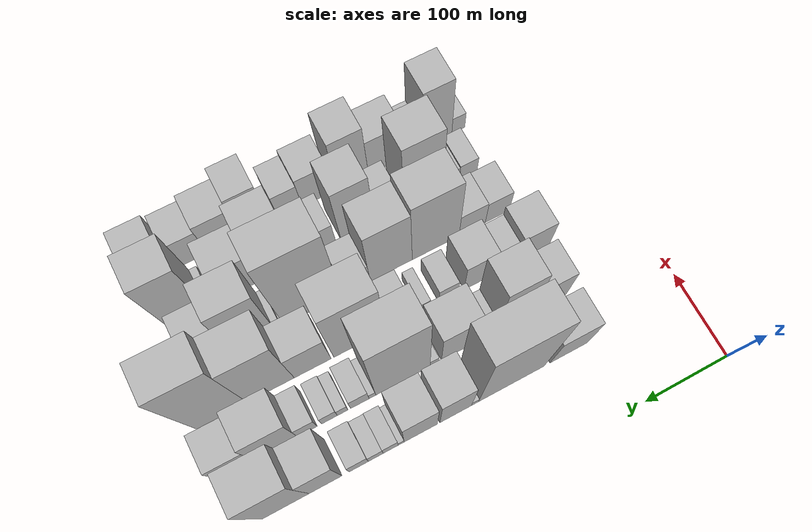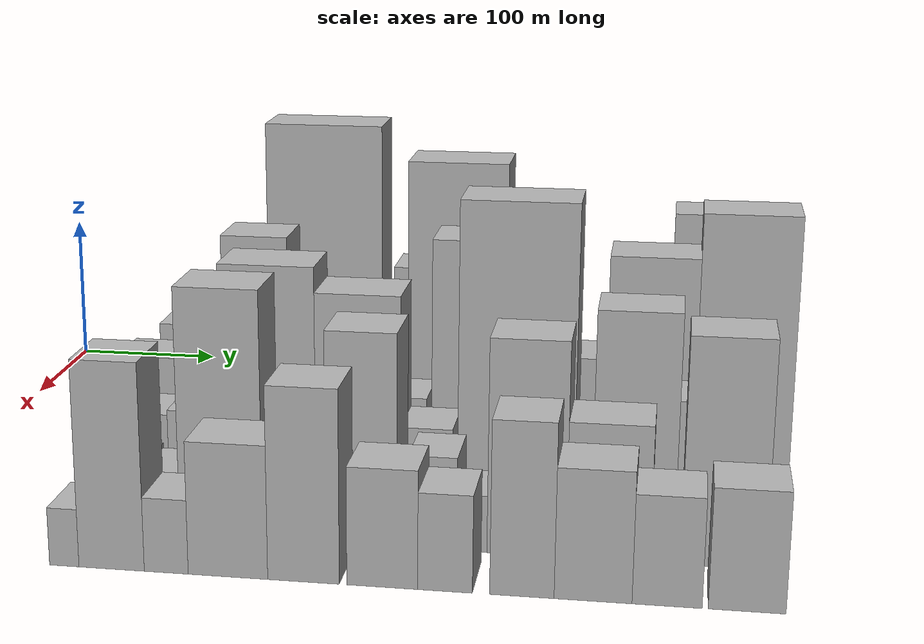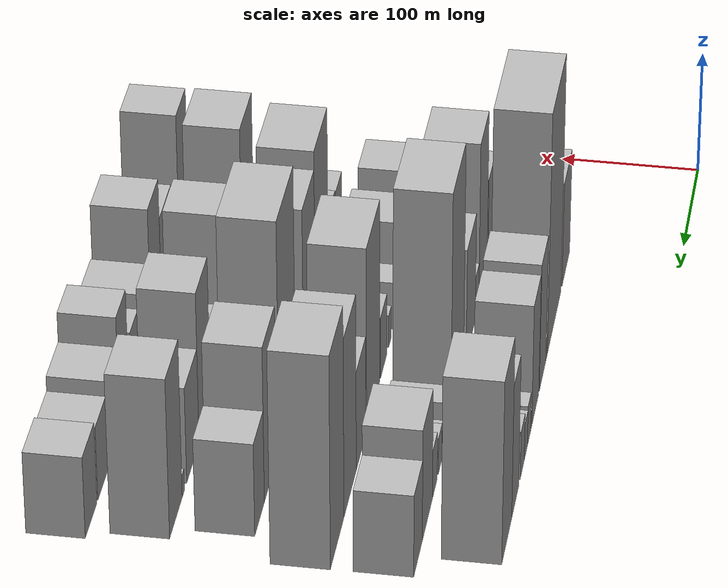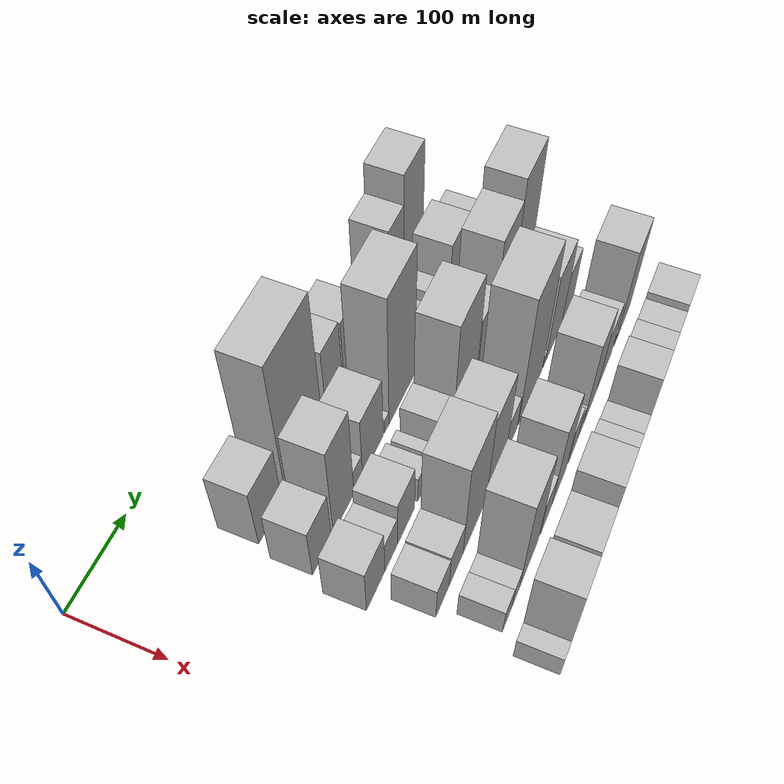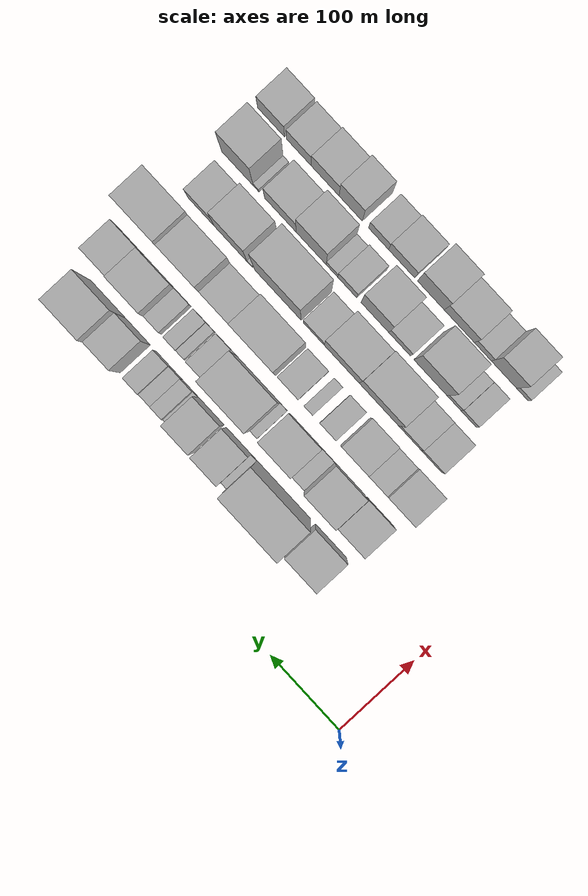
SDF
<sdf version="1.6">
 <world name="default">
  <model name="building_33">
   <static>1</static>
   <pose>100.0000 142.1767 0 0.000000 0.000000 0.000000</pose>
   <link name="link">
    <pose>0 0 43.50 0 0 0</pose>
    <collision name="collision"><geometry><box><size>40.0000 44.8332 87.0000</size></box></geometry></collision>
    <visual name="visual">
     <cast_shadows>0</cast_shadows>
     <geometry><box><size>40.0000 44.8332 87.0000</size></box></geometry>
     <material>
      <script>
       <uri>model://HANNAS_wall/materials/scripts</uri>
       <uri>model://HANNAS_wall/materials/textures</uri>
       <name>vrc/HANNAS_wall</name>
      </script>
     </material>
    </visual>
   </link>
  </model>
  <model name="building_34">
   <static>1</static>
   <pose>100.0000 210.1831 0 0.000000 0.000000 0.000000</pose>
   <link name="link">
    <pose>0 0 99.00 0 0 0</pose>
    <collision name="collision"><geometry><box><size>40.0000 77.1794 198.0000</size></box></geometry></collision>
    <visual name="visual">
     <cast_shadows>0</cast_shadows>
     <geometry><box><size>40.0000 77.1794 198.0000</size></box></geometry>
     <material>
      <script>
       <uri>model://HANNAS_wall/materials/scripts</uri>
       <uri>model://HANNAS_wall/materials/textures</uri>
       <name>vrc/HANNAS_wall</name>
      </script>
     </material>
    </visual>
   </link>
  </model>
  <model name="building_35">
   <static>1</static>
   <pose>100.0000 252.8782 0 0.000000 0.000000 0.000000</pose>
   <link name="link">
    <pose>0 0 9.00 0 0 0</pose>
    <collision name="collision"><geometry><box><size>40.0000 8.2108 18.0000</size></box></geometry></collision>
    <visual name="visual">
     <cast_shadows>0</cast_shadows>
     <geometry><box><size>40.0000 8.2108 18.0000</size></box></geometry>
     <material>
      <script>
       <uri>model://HANNAS_wall/materials/scripts</uri>
       <uri>model://HANNAS_wall/materials/textures</uri>
       <name>vrc/HANNAS_wall</name>
      </script>
     </material>
    </visual>
   </link>
  </model>
  <model name="building_36">
   <static>1</static>
   <pose>100.0000 275.0869 0 0.000000 0.000000 0.000000</pose>
   <link name="link">
    <pose>0 0 52.50 0 0 0</pose>
    <collision name="collision"><geometry><box><size>40.0000 36.2067 105.0000</size></box></geometry></collision>
    <visual name="visual">
     <cast_shadows>0</cast_shadows>
     <geometry><box><size>40.0000 36.2067 105.0000</size></box></geometry>
     <material>
      <script>
       <uri>model://HANNAS_wall/materials/scripts</uri>
       <uri>model://HANNAS_wall/materials/textures</uri>
       <name>vrc/HANNAS_wall</name>
      </script>
     </material>
    </visual>
   </link>
  </model>
  <model name="building_37">
   <static>1</static>
   <pose>100.0000 314.8873 0 0.000000 0.000000 0.000000</pose>
   <link name="link">
    <pose>0 0 49.50 0 0 0</pose>
    <collision name="collision"><geometry><box><size>40.0000 37.3941 99.0000</size></box></geometry></collision>
    <visual name="visual">
     <cast_shadows>0</cast_shadows>
     <geometry><box><size>40.0000 37.3941 99.0000</size></box></geometry>
     <material>
      <script>
       <uri>model://HANNAS_wall/materials/scripts</uri>
       <uri>model://HANNAS_wall/materials/textures</uri>
       <name>vrc/HANNAS_wall</name>
      </script>
     </material>
    </visual>
   </link>
  </model>
  <model name="building_38">
   <static>1</static>
   <pose>100.0000 336.9596 0 0.000000 0.000000 0.000000</pose>
   <link name="link">
    <pose>0 0 7.50 0 0 0</pose>
    <collision name="collision"><geometry><box><size>40.0000 6.7504 15.0000</size></box></geometry></collision>
    <visual name="visual">
     <cast_shadows>0</cast_shadows>
     <geometry><box><size>40.0000 6.7504 15.0000</size></box></geometry>
     <material>
      <script>
       <uri>model://HANNAS_wall/materials/scripts</uri>
       <uri>model://HANNAS_wall/materials/textures</uri>
       <name>vrc/HANNAS_wall</name>
      </script>
     </material>
    </visual>
   </link>
  </model>
  <model name="building_39">
   <static>1</static>
   <pose>100.0000 348.7307 0 0.000000 0.000000 0.000000</pose>
   <link name="link">
    <pose>0 0 16.50 0 0 0</pose>
    <collision name="collision"><geometry><box><size>40.0000 16.7919 33.0000</size></box></geometry></collision>
    <visual name="visual">
     <cast_shadows>0</cast_shadows>
     <geometry><box><size>40.0000 16.7919 33.0000</size></box></geometry>
     <material>
      <script>
       <uri>model://HANNAS_wall/materials/scripts</uri>
       <uri>model://HANNAS_wall/materials/textures</uri>
       <name>vrc/HANNAS_wall</name>
      </script>
     </material>
    </visual>
   </link>
  </model>
  <model name="building_40">
   <static>1</static>
   <pose>100.0000 365.3119 0 0.000000 0.000000 0.000000</pose>
   <link name="link">
    <pose>0 0 15.00 0 0 0</pose>
    <collision name="collision"><geometry><box><size>40.0000 16.3705 30.0000</size></box></geometry></collision>
    <visual name="visual">
     <cast_shadows>0</cast_shadows>
     <geometry><box><size>40.0000 16.3705 30.0000</size></box></geometry>
     <material>
      <script>
       <uri>model://HANNAS_wall/materials/scripts</uri>
       <uri>model://HANNAS_wall/materials/textures</uri>
       <name>vrc/HANNAS_wall</name>
      </script>
     </material>
    </visual>
   </link>
  </model>
  <model name="building_41">
   <static>1</static>
   <pose>100.0000 384.2088 0 0.000000 0.000000 0.000000</pose>
   <link name="link">
    <pose>0 0 19.50 0 0 0</pose>
    <collision name="collision"><geometry><box><size>40.0000 21.4233 39.0000</size></box></geometry></collision>
    <visual name="visual">
     <cast_shadows>0</cast_shadows>
     <geometry><box><size>40.0000 21.4233 39.0000</size></box></geometry>
     <material>
      <script>
       <uri>model://HANNAS_wall/materials/scripts</uri>
       <uri>model://HANNAS_wall/materials/textures</uri>
       <name>vrc/HANNAS_wall</name>
      </script>
     </material>
    </visual>
   </link>
  </model>
  <model name="building_42">
   <static>1</static>
   <pose>100.0000 420.8297 0 0.000000 0.000000 0.000000</pose>
   <link name="link">
    <pose>0 0 54.00 0 0 0</pose>
    <collision name="collision"><geometry><box><size>40.0000 35.8184 108.0000</size></box></geometry></collision>
    <visual name="visual">
     <cast_shadows>0</cast_shadows>
     <geometry><box><size>40.0000 35.8184 108.0000</size></box></geometry>
     <material>
      <script>
       <uri>model://HANNAS_wall/materials/scripts</uri>
       <uri>model://HANNAS_wall/materials/textures</uri>
       <name>vrc/HANNAS_wall</name>
      </script>
     </material>
    </visual>
   </link>
  </model>
  <model name="building_43">
   <static>1</static>
   <pose>100.0000 463.9994 0 0.000000 0.000000 0.000000</pose>
   <link name="link">
    <pose>0 0 73.50 0 0 0</pose>
    <collision name="collision"><geometry><box><size>40.0000 50.5210 147.0000</size></box></geometry></collision>
    <visual name="visual">
     <cast_shadows>0</cast_shadows>
     <geometry><box><size>40.0000 50.5210 147.0000</size></box></geometry>
     <material>
      <script>
       <uri>model://HANNAS_wall/materials/scripts</uri>
       <uri>model://HANNAS_wall/materials/textures</uri>
       <name>vrc/HANNAS_wall</name>
      </script>
     </material>
    </visual>
   </link>
  </model>
  <model name="building_86">
   <static>1</static>
   <pose>155.0000 130.8605 0 0.000000 0.000000 0.000000</pose>
   <link name="link">
    <pose>0 0 37.50 0 0 0</pose>
    <collision name="collision"><geometry><box><size>40.0000 37.7377 75.0000</size></box></geometry></collision>
    <visual name="visual">
     <cast_shadows>0</cast_shadows>
     <geometry><box><size>40.0000 37.7377 75.0000</size></box></geometry>
     <material>
      <script>
       <uri>model://HANNAS_wall/materials/scripts</uri>
       <uri>model://HANNAS_wall/materials/textures</uri>
       <name>vrc/HANNAS_wall</name>
      </script>
     </material>
    </visual>
   </link>
  </model>
  <model name="building_87">
   <static>1</static>
   <pose>155.0000 175.2452 0 0.000000 0.000000 0.000000</pose>
   <link name="link">
    <pose>0 0 67.50 0 0 0</pose>
    <collision name="collision"><geometry><box><size>40.0000 43.0318 135.0000</size></box></geometry></collision>
    <visual name="visual">
     <cast_shadows>0</cast_shadows>
     <geometry><box><size>40.0000 43.0318 135.0000</size></box></geometry>
     <material>
      <script>
       <uri>model://HANNAS_wall/materials/scripts</uri>
       <uri>model://HANNAS_wall/materials/textures</uri>
       <name>vrc/HANNAS_wall</name>
      </script>
     </material>
    </visual>
   </link>
  </model>
  <model name="building_88">
   <static>1</static>
   <pose>155.0000 206.0267 0 0.000000 0.000000 0.000000</pose>
   <link name="link">
    <pose>0 0 18.00 0 0 0</pose>
    <collision name="collision"><geometry><box><size>40.0000 18.5311 36.0000</size></box></geometry></collision>
    <visual name="visual">
     <cast_shadows>0</cast_shadows>
     <geometry><box><size>40.0000 18.5311 36.0000</size></box></geometry>
     <material>
      <script>
       <uri>model://HANNAS_wall/materials/scripts</uri>
       <uri>model://HANNAS_wall/materials/textures</uri>
       <name>vrc/HANNAS_wall</name>
      </script>
     </material>
    </visual>
   </link>
  </model>
  <model name="building_89">
   <static>1</static>
   <pose>155.0000 238.3310 0 0.000000 0.000000 0.000000</pose>
   <link name="link">
    <pose>0 0 45.00 0 0 0</pose>
    <collision name="collision"><geometry><box><size>40.0000 46.0777 90.0000</size></box></geometry></collision>
    <visual name="visual">
     <cast_shadows>0</cast_shadows>
     <geometry><box><size>40.0000 46.0777 90.0000</size></box></geometry>
     <material>
      <script>
       <uri>model://HANNAS_wall/materials/scripts</uri>
       <uri>model://HANNAS_wall/materials/textures</uri>
       <name>vrc/HANNAS_wall</name>
      </script>
     </material>
    </visual>
   </link>
  </model>
  <model name="building_90">
   <static>1</static>
   <pose>155.0000 269.5385 0 0.000000 0.000000 0.000000</pose>
   <link name="link">
    <pose>0 0 10.50 0 0 0</pose>
    <collision name="collision"><geometry><box><size>40.0000 10.3374 21.0000</size></box></geometry></collision>
    <visual name="visual">
     <cast_shadows>0</cast_shadows>
     <geometry><box><size>40.0000 10.3374 21.0000</size></box></geometry>
     <material>
      <script>
       <uri>model://HANNAS_wall/materials/scripts</uri>
       <uri>model://HANNAS_wall/materials/textures</uri>
       <name>vrc/HANNAS_wall</name>
      </script>
     </material>
    </visual>
   </link>
  </model>
  <model name="building_91">
   <static>1</static>
   <pose>155.0000 305.9449 0 0.000000 0.000000 0.000000</pose>
   <link name="link">
    <pose>0 0 93.00 0 0 0</pose>
    <collision name="collision"><geometry><box><size>40.0000 62.4753 186.0000</size></box></geometry></collision>
    <visual name="visual">
     <cast_shadows>0</cast_shadows>
     <geometry><box><size>40.0000 62.4753 186.0000</size></box></geometry>
     <material>
      <script>
       <uri>model://HANNAS_wall/materials/scripts</uri>
       <uri>model://HANNAS_wall/materials/textures</uri>
       <name>vrc/HANNAS_wall</name>
      </script>
     </material>
    </visual>
   </link>
  </model>
  <model name="building_92">
   <static>1</static>
   <pose>155.0000 340.9703 0 0.000000 0.000000 0.000000</pose>
   <link name="link">
    <pose>0 0 9.00 0 0 0</pose>
    <collision name="collision"><geometry><box><size>40.0000 7.5755 18.0000</size></box></geometry></collision>
    <visual name="visual">
     <cast_shadows>0</cast_shadows>
     <geometry><box><size>40.0000 7.5755 18.0000</size></box></geometry>
     <material>
      <script>
       <uri>model://HANNAS_wall/materials/scripts</uri>
       <uri>model://HANNAS_wall/materials/textures</uri>
       <name>vrc/HANNAS_wall</name>
      </script>
     </material>
    </visual>
   </link>
  </model>
  <model name="building_93">
   <static>1</static>
   <pose>155.0000 355.2063 0 0.000000 0.000000 0.000000</pose>
   <link name="link">
    <pose>0 0 18.00 0 0 0</pose>
    <collision name="collision"><geometry><box><size>40.0000 20.8964 36.0000</size></box></geometry></collision>
    <visual name="visual">
     <cast_shadows>0</cast_shadows>
     <geometry><box><size>40.0000 20.8964 36.0000</size></box></geometry>
     <material>
      <script>
       <uri>model://HANNAS_wall/materials/scripts</uri>
       <uri>model://HANNAS_wall/materials/textures</uri>
       <name>vrc/HANNAS_wall</name>
      </script>
     </material>
    </visual>
   </link>
  </model>
  <model name="building_94">
   <static>1</static>
   <pose>155.0000 374.6204 0 0.000000 0.000000 0.000000</pose>
   <link name="link">
    <pose>0 0 12.00 0 0 0</pose>
    <collision name="collision"><geometry><box><size>40.0000 11.9318 24.0000</size></box></geometry></collision>
    <visual name="visual">
     <cast_shadows>0</cast_shadows>
     <geometry><box><size>40.0000 11.9318 24.0000</size></box></geometry>
     <material>
      <script>
       <uri>model://HANNAS_wall/materials/scripts</uri>
       <uri>model://HANNAS_wall/materials/textures</uri>
       <name>vrc/HANNAS_wall</name>
      </script>
     </material>
    </visual>
   </link>
  </model>
  <model name="building_95">
   <static>1</static>
   <pose>155.0000 389.4227 0 0.000000 0.000000 0.000000</pose>
   <link name="link">
    <pose>0 0 15.00 0 0 0</pose>
    <collision name="collision"><geometry><box><size>40.0000 17.6727 30.0000</size></box></geometry></collision>
    <visual name="visual">
     <cast_shadows>0</cast_shadows>
     <geometry><box><size>40.0000 17.6727 30.0000</size></box></geometry>
     <material>
      <script>
       <uri>model://HANNAS_wall/materials/scripts</uri>
       <uri>model://HANNAS_wall/materials/textures</uri>
       <name>vrc/HANNAS_wall</name>
      </script>
     </material>
    </visual>
   </link>
  </model>
  <model name="building_96">
   <static>1</static>
   <pose>155.0000 414.1274 0 0.000000 0.000000 0.000000</pose>
   <link name="link">
    <pose>0 0 19.50 0 0 0</pose>
    <collision name="collision"><geometry><box><size>40.0000 21.7367 39.0000</size></box></geometry></collision>
    <visual name="visual">
     <cast_shadows>0</cast_shadows>
     <geometry><box><size>40.0000 21.7367 39.0000</size></box></geometry>
     <material>
      <script>
       <uri>model://HANNAS_wall/materials/scripts</uri>
       <uri>model://HANNAS_wall/materials/textures</uri>
       <name>vrc/HANNAS_wall</name>
      </script>
     </material>
    </visual>
   </link>
  </model>
  <model name="building_97">
   <static>1</static>
   <pose>155.0000 448.5511 0 0.000000 0.000000 0.000000</pose>
   <link name="link">
    <pose>0 0 45.00 0 0 0</pose>
    <collision name="collision"><geometry><box><size>40.0000 47.1107 90.0000</size></box></geometry></collision>
    <visual name="visual">
     <cast_shadows>0</cast_shadows>
     <geometry><box><size>40.0000 47.1107 90.0000</size></box></geometry>
     <material>
      <script>
       <uri>model://HANNAS_wall/materials/scripts</uri>
       <uri>model://HANNAS_wall/materials/textures</uri>
       <name>vrc/HANNAS_wall</name>
      </script>
     </material>
    </visual>
   </link>
  </model>
  <model name="building_98">
   <static>1</static>
   <pose>155.0000 491.6109 0 0.000000 0.000000 0.000000</pose>
   <link name="link">
    <pose>0 0 33.00 0 0 0</pose>
    <collision name="collision"><geometry><box><size>40.0000 39.0090 66.0000</size></box></geometry></collision>
    <visual name="visual">
     <cast_shadows>0</cast_shadows>
     <geometry><box><size>40.0000 39.0090 66.0000</size></box></geometry>
     <material>
      <script>
       <uri>model://HANNAS_wall/materials/scripts</uri>
       <uri>model://HANNAS_wall/materials/textures</uri>
       <name>vrc/HANNAS_wall</name>
      </script>
     </material>
    </visual>
   </link>
  </model>
  <model name="building_138">
   <static>1</static>
   <pose>210.0000 119.7731 0 0.000000 0.000000 0.000000</pose>
   <link name="link">
    <pose>0 0 34.50 0 0 0</pose>
    <collision name="collision"><geometry><box><size>40.0000 37.9823 69.0000</size></box></geometry></collision>
    <visual name="visual">
     <cast_shadows>0</cast_shadows>
     <geometry><box><size>40.0000 37.9823 69.0000</size></box></geometry>
     <material>
      <script>
       <uri>model://HANNAS_wall/materials/scripts</uri>
       <uri>model://HANNAS_wall/materials/textures</uri>
       <name>vrc/HANNAS_wall</name>
      </script>
     </material>
    </visual>
   </link>
  </model>
  <model name="building_139">
   <static>1</static>
   <pose>210.0000 152.4103 0 0.000000 0.000000 0.000000</pose>
   <link name="link">
    <pose>0 0 24.00 0 0 0</pose>
    <collision name="collision"><geometry><box><size>40.0000 27.2921 48.0000</size></box></geometry></collision>
    <visual name="visual">
     <cast_shadows>0</cast_shadows>
     <geometry><box><size>40.0000 27.2921 48.0000</size></box></geometry>
     <material>
      <script>
       <uri>model://HANNAS_wall/materials/scripts</uri>
       <uri>model://HANNAS_wall/materials/textures</uri>
       <name>vrc/HANNAS_wall</name>
      </script>
     </material>
    </visual>
   </link>
  </model>
  <model name="building_140">
   <static>1</static>
   <pose>210.0000 185.1663 0 0.000000 0.000000 0.000000</pose>
   <link name="link">
    <pose>0 0 34.50 0 0 0</pose>
    <collision name="collision"><geometry><box><size>40.0000 38.2198 69.0000</size></box></geometry></collision>
    <visual name="visual">
     <cast_shadows>0</cast_shadows>
     <geometry><box><size>40.0000 38.2198 69.0000</size></box></geometry>
     <material>
      <script>
       <uri>model://HANNAS_wall/materials/scripts</uri>
       <uri>model://HANNAS_wall/materials/textures</uri>
       <name>vrc/HANNAS_wall</name>
      </script>
     </material>
    </visual>
   </link>
  </model>
  <model name="building_141">
   <static>1</static>
   <pose>210.0000 222.8262 0 0.000000 0.000000 0.000000</pose>
   <link name="link">
    <pose>0 0 19.50 0 0 0</pose>
    <collision name="collision"><geometry><box><size>40.0000 23.1000 39.0000</size></box></geometry></collision>
    <visual name="visual">
     <cast_shadows>0</cast_shadows>
     <geometry><box><size>40.0000 23.1000 39.0000</size></box></geometry>
     <material>
      <script>
       <uri>model://HANNAS_wall/materials/scripts</uri>
       <uri>model://HANNAS_wall/materials/textures</uri>
       <name>vrc/HANNAS_wall</name>
      </script>
     </material>
    </visual>
   </link>
  </model>
  <model name="building_142">
   <static>1</static>
   <pose>210.0000 250.6755 0 0.000000 0.000000 0.000000</pose>
   <link name="link">
    <pose>0 0 13.50 0 0 0</pose>
    <collision name="collision"><geometry><box><size>40.0000 12.5986 27.0000</size></box></geometry></collision>
    <visual name="visual">
     <cast_shadows>0</cast_shadows>
     <geometry><box><size>40.0000 12.5986 27.0000</size></box></geometry>
     <material>
      <script>
       <uri>model://HANNAS_wall/materials/scripts</uri>
       <uri>model://HANNAS_wall/materials/textures</uri>
       <name>vrc/HANNAS_wall</name>
      </script>
     </material>
    </visual>
   </link>
  </model>
  <model name="building_143">
   <static>1</static>
   <pose>210.0000 279.7951 0 0.000000 0.000000 0.000000</pose>
   <link name="link">
    <pose>0 0 25.50 0 0 0</pose>
    <collision name="collision"><geometry><box><size>40.0000 29.6405 51.0000</size></box></geometry></collision>
    <visual name="visual">
     <cast_shadows>0</cast_shadows>
     <geometry><box><size>40.0000 29.6405 51.0000</size></box></geometry>
     <material>
      <script>
       <uri>model://HANNAS_wall/materials/scripts</uri>
       <uri>model://HANNAS_wall/materials/textures</uri>
       <name>vrc/HANNAS_wall</name>
      </script>
     </material>
    </visual>
   </link>
  </model>
  <model name="building_144">
   <static>1</static>
   <pose>210.0000 327.4892 0 0.000000 0.000000 0.000000</pose>
   <link name="link">
    <pose>0 0 75.00 0 0 0</pose>
    <collision name="collision"><geometry><box><size>40.0000 59.7477 150.0000</size></box></geometry></collision>
    <visual name="visual">
     <cast_shadows>0</cast_shadows>
     <geometry><box><size>40.0000 59.7477 150.0000</size></box></geometry>
     <material>
      <script>
       <uri>model://HANNAS_wall/materials/scripts</uri>
       <uri>model://HANNAS_wall/materials/textures</uri>
       <name>vrc/HANNAS_wall</name>
      </script>
     </material>
    </visual>
   </link>
  </model>
  <model name="building_145">
   <static>1</static>
   <pose>210.0000 381.3656 0 0.000000 0.000000 0.000000</pose>
   <link name="link">
    <pose>0 0 40.50 0 0 0</pose>
    <collision name="collision"><geometry><box><size>40.0000 42.0051 81.0000</size></box></geometry></collision>
    <visual name="visual">
     <cast_shadows>0</cast_shadows>
     <geometry><box><size>40.0000 42.0051 81.0000</size></box></geometry>
     <material>
      <script>
       <uri>model://HANNAS_wall/materials/scripts</uri>
       <uri>model://HANNAS_wall/materials/textures</uri>
       <name>vrc/HANNAS_wall</name>
      </script>
     </material>
    </visual>
   </link>
  </model>
  <model name="building_146">
   <static>1</static>
   <pose>210.0000 428.6325 0 0.000000 0.000000 0.000000</pose>
   <link name="link">
    <pose>0 0 72.00 0 0 0</pose>
    <collision name="collision"><geometry><box><size>40.0000 52.5286 144.0000</size></box></geometry></collision>
    <visual name="visual">
     <cast_shadows>0</cast_shadows>
     <geometry><box><size>40.0000 52.5286 144.0000</size></box></geometry>
     <material>
      <script>
       <uri>model://HANNAS_wall/materials/scripts</uri>
       <uri>model://HANNAS_wall/materials/textures</uri>
       <name>vrc/HANNAS_wall</name>
      </script>
     </material>
    </visual>
   </link>
  </model>
  <model name="building_147">
   <static>1</static>
   <pose>210.0000 483.1780 0 0.000000 0.000000 0.000000</pose>
   <link name="link">
    <pose>0 0 85.50 0 0 0</pose>
    <collision name="collision"><geometry><box><size>40.0000 56.5623 171.0000</size></box></geometry></collision>
    <visual name="visual">
     <cast_shadows>0</cast_shadows>
     <geometry><box><size>40.0000 56.5623 171.0000</size></box></geometry>
     <material>
      <script>
       <uri>model://HANNAS_wall/materials/scripts</uri>
       <uri>model://HANNAS_wall/materials/textures</uri>
       <name>vrc/HANNAS_wall</name>
      </script>
     </material>
    </visual>
   </link>
  </model>
  <model name="building_192">
   <static>1</static>
   <pose>265.0000 132.8029 0 0.000000 0.000000 0.000000</pose>
   <link name="link">
    <pose>0 0 25.50 0 0 0</pose>
    <collision name="collision"><geometry><box><size>40.0000 29.7994 51.0000</size></box></geometry></collision>
    <visual name="visual">
     <cast_shadows>0</cast_shadows>
     <geometry><box><size>40.0000 29.7994 51.0000</size></box></geometry>
     <material>
      <script>
       <uri>model://HANNAS_wall/materials/scripts</uri>
       <uri>model://HANNAS_wall/materials/textures</uri>
       <name>vrc/HANNAS_wall</name>
      </script>
     </material>
    </visual>
   </link>
  </model>
  <model name="building_193">
   <static>1</static>
   <pose>265.0000 163.8663 0 0.000000 0.000000 0.000000</pose>
   <link name="link">
    <pose>0 0 27.00 0 0 0</pose>
    <collision name="collision"><geometry><box><size>40.0000 32.3273 54.0000</size></box></geometry></collision>
    <visual name="visual">
     <cast_shadows>0</cast_shadows>
     <geometry><box><size>40.0000 32.3273 54.0000</size></box></geometry>
     <material>
      <script>
       <uri>model://HANNAS_wall/materials/scripts</uri>
       <uri>model://HANNAS_wall/materials/textures</uri>
       <name>vrc/HANNAS_wall</name>
      </script>
     </material>
    </visual>
   </link>
  </model>
  <model name="building_194">
   <static>1</static>
   <pose>265.0000 208.4505 0 0.000000 0.000000 0.000000</pose>
   <link name="link">
    <pose>0 0 72.00 0 0 0</pose>
    <collision name="collision"><geometry><box><size>40.0000 56.8411 144.0000</size></box></geometry></collision>
    <visual name="visual">
     <cast_shadows>0</cast_shadows>
     <geometry><box><size>40.0000 56.8411 144.0000</size></box></geometry>
     <material>
      <script>
       <uri>model://HANNAS_wall/materials/scripts</uri>
       <uri>model://HANNAS_wall/materials/textures</uri>
       <name>vrc/HANNAS_wall</name>
      </script>
     </material>
    </visual>
   </link>
  </model>
  <model name="building_195">
   <static>1</static>
   <pose>265.0000 262.0289 0 0.000000 0.000000 0.000000</pose>
   <link name="link">
    <pose>0 0 64.50 0 0 0</pose>
    <collision name="collision"><geometry><box><size>40.0000 50.3157 129.0000</size></box></geometry></collision>
    <visual name="visual">
     <cast_shadows>0</cast_shadows>
     <geometry><box><size>40.0000 50.3157 129.0000</size></box></geometry>
     <material>
      <script>
       <uri>model://HANNAS_wall/materials/scripts</uri>
       <uri>model://HANNAS_wall/materials/textures</uri>
       <name>vrc/HANNAS_wall</name>
      </script>
     </material>
    </visual>
   </link>
  </model>
  <model name="building_196">
   <static>1</static>
   <pose>265.0000 302.3254 0 0.000000 0.000000 0.000000</pose>
   <link name="link">
    <pose>0 0 25.50 0 0 0</pose>
    <collision name="collision"><geometry><box><size>40.0000 30.2773 51.0000</size></box></geometry></collision>
    <visual name="visual">
     <cast_shadows>0</cast_shadows>
     <geometry><box><size>40.0000 30.2773 51.0000</size></box></geometry>
     <material>
      <script>
       <uri>model://HANNAS_wall/materials/scripts</uri>
       <uri>model://HANNAS_wall/materials/textures</uri>
       <name>vrc/HANNAS_wall</name>
      </script>
     </material>
    </visual>
   </link>
  </model>
  <model name="building_197">
   <static>1</static>
   <pose>265.0000 354.0483 0 0.000000 0.000000 0.000000</pose>
   <link name="link">
    <pose>0 0 93.00 0 0 0</pose>
    <collision name="collision"><geometry><box><size>40.0000 67.1686 186.0000</size></box></geometry></collision>
    <visual name="visual">
     <cast_shadows>0</cast_shadows>
     <geometry><box><size>40.0000 67.1686 186.0000</size></box></geometry>
     <material>
      <script>
       <uri>model://HANNAS_wall/materials/scripts</uri>
       <uri>model://HANNAS_wall/materials/textures</uri>
       <name>vrc/HANNAS_wall</name>
      </script>
     </material>
    </visual>
   </link>
  </model>
  <model name="building_198">
   <static>1</static>
   <pose>265.0000 394.4452 0 0.000000 0.000000 0.000000</pose>
   <link name="link">
    <pose>0 0 9.00 0 0 0</pose>
    <collision name="collision"><geometry><box><size>40.0000 7.6251 18.0000</size></box></geometry></collision>
    <visual name="visual">
     <cast_shadows>0</cast_shadows>
     <geometry><box><size>40.0000 7.6251 18.0000</size></box></geometry>
     <material>
      <script>
       <uri>model://HANNAS_wall/materials/scripts</uri>
       <uri>model://HANNAS_wall/materials/textures</uri>
       <name>vrc/HANNAS_wall</name>
      </script>
     </material>
    </visual>
   </link>
  </model>
  <model name="building_199">
   <static>1</static>
   <pose>265.0000 422.1411 0 0.000000 0.000000 0.000000</pose>
   <link name="link">
    <pose>0 0 63.00 0 0 0</pose>
    <collision name="collision"><geometry><box><size>40.0000 47.7667 126.0000</size></box></geometry></collision>
    <visual name="visual">
     <cast_shadows>0</cast_shadows>
     <geometry><box><size>40.0000 47.7667 126.0000</size></box></geometry>
     <material>
      <script>
       <uri>model://HANNAS_wall/materials/scripts</uri>
       <uri>model://HANNAS_wall/materials/textures</uri>
       <name>vrc/HANNAS_wall</name>
      </script>
     </material>
    </visual>
   </link>
  </model>
  <model name="building_200">
   <static>1</static>
   <pose>265.0000 464.8283 0 0.000000 0.000000 0.000000</pose>
   <link name="link">
    <pose>0 0 37.50 0 0 0</pose>
    <collision name="collision"><geometry><box><size>40.0000 37.6077 75.0000</size></box></geometry></collision>
    <visual name="visual">
     <cast_shadows>0</cast_shadows>
     <geometry><box><size>40.0000 37.6077 75.0000</size></box></geometry>
     <material>
      <script>
       <uri>model://HANNAS_wall/materials/scripts</uri>
       <uri>model://HANNAS_wall/materials/textures</uri>
       <name>vrc/HANNAS_wall</name>
      </script>
     </material>
    </visual>
   </link>
  </model>
  <model name="building_248">
   <static>1</static>
   <pose>320.0000 138.4591 0 0.000000 0.000000 0.000000</pose>
   <link name="link">
    <pose>0 0 19.50 0 0 0</pose>
    <collision name="collision"><geometry><box><size>40.0000 21.9450 39.0000</size></box></geometry></collision>
    <visual name="visual">
     <cast_shadows>0</cast_shadows>
     <geometry><box><size>40.0000 21.9450 39.0000</size></box></geometry>
     <material>
      <script>
       <uri>model://HANNAS_wall/materials/scripts</uri>
       <uri>model://HANNAS_wall/materials/textures</uri>
       <name>vrc/HANNAS_wall</name>
      </script>
     </material>
    </visual>
   </link>
  </model>
  <model name="building_249">
   <static>1</static>
   <pose>320.0000 159.3952 0 0.000000 0.000000 0.000000</pose>
   <link name="link">
    <pose>0 0 18.00 0 0 0</pose>
    <collision name="collision"><geometry><box><size>40.0000 19.9273 36.0000</size></box></geometry></collision>
    <visual name="visual">
     <cast_shadows>0</cast_shadows>
     <geometry><box><size>40.0000 19.9273 36.0000</size></box></geometry>
     <material>
      <script>
       <uri>model://HANNAS_wall/materials/scripts</uri>
       <uri>model://HANNAS_wall/materials/textures</uri>
       <name>vrc/HANNAS_wall</name>
      </script>
     </material>
    </visual>
   </link>
  </model>
  <model name="building_250">
   <static>1</static>
   <pose>320.0000 193.3382 0 0.000000 0.000000 0.000000</pose>
   <link name="link">
    <pose>0 0 72.00 0 0 0</pose>
    <collision name="collision"><geometry><box><size>40.0000 47.9586 144.0000</size></box></geometry></collision>
    <visual name="visual">
     <cast_shadows>0</cast_shadows>
     <geometry><box><size>40.0000 47.9586 144.0000</size></box></geometry>
     <material>
      <script>
       <uri>model://HANNAS_wall/materials/scripts</uri>
       <uri>model://HANNAS_wall/materials/textures</uri>
       <name>vrc/HANNAS_wall</name>
      </script>
     </material>
    </visual>
   </link>
  </model>
  <model name="building_251">
   <static>1</static>
   <pose>320.0000 237.8820 0 0.000000 0.000000 0.000000</pose>
   <link name="link">
    <pose>0 0 27.00 0 0 0</pose>
    <collision name="collision"><geometry><box><size>40.0000 31.1290 54.0000</size></box></geometry></collision>
    <visual name="visual">
     <cast_shadows>0</cast_shadows>
     <geometry><box><size>40.0000 31.1290 54.0000</size></box></geometry>
     <material>
      <script>
       <uri>model://HANNAS_wall/materials/scripts</uri>
       <uri>model://HANNAS_wall/materials/textures</uri>
       <name>vrc/HANNAS_wall</name>
      </script>
     </material>
    </visual>
   </link>
  </model>
  <model name="building_252">
   <static>1</static>
   <pose>320.0000 273.6150 0 0.000000 0.000000 0.000000</pose>
   <link name="link">
    <pose>0 0 61.50 0 0 0</pose>
    <collision name="collision"><geometry><box><size>40.0000 40.3371 123.0000</size></box></geometry></collision>
    <visual name="visual">
     <cast_shadows>0</cast_shadows>
     <geometry><box><size>40.0000 40.3371 123.0000</size></box></geometry>
     <material>
      <script>
       <uri>model://HANNAS_wall/materials/scripts</uri>
       <uri>model://HANNAS_wall/materials/textures</uri>
       <name>vrc/HANNAS_wall</name>
      </script>
     </material>
    </visual>
   </link>
  </model>
  <model name="building_253">
   <static>1</static>
   <pose>320.0000 313.5128 0 0.000000 0.000000 0.000000</pose>
   <link name="link">
    <pose>0 0 27.00 0 0 0</pose>
    <collision name="collision"><geometry><box><size>40.0000 27.4585 54.0000</size></box></geometry></collision>
    <visual name="visual">
     <cast_shadows>0</cast_shadows>
     <geometry><box><size>40.0000 27.4585 54.0000</size></box></geometry>
     <material>
      <script>
       <uri>model://HANNAS_wall/materials/scripts</uri>
       <uri>model://HANNAS_wall/materials/textures</uri>
       <name>vrc/HANNAS_wall</name>
      </script>
     </material>
    </visual>
   </link>
  </model>
  <model name="building_254">
   <static>1</static>
   <pose>320.0000 335.5737 0 0.000000 0.000000 0.000000</pose>
   <link name="link">
    <pose>0 0 16.50 0 0 0</pose>
    <collision name="collision"><geometry><box><size>40.0000 16.6633 33.0000</size></box></geometry></collision>
    <visual name="visual">
     <cast_shadows>0</cast_shadows>
     <geometry><box><size>40.0000 16.6633 33.0000</size></box></geometry>
     <material>
      <script>
       <uri>model://HANNAS_wall/materials/scripts</uri>
       <uri>model://HANNAS_wall/materials/textures</uri>
       <name>vrc/HANNAS_wall</name>
      </script>
     </material>
    </visual>
   </link>
  </model>
  <model name="building_255">
   <static>1</static>
   <pose>320.0000 365.5945 0 0.000000 0.000000 0.000000</pose>
   <link name="link">
    <pose>0 0 61.50 0 0 0</pose>
    <collision name="collision"><geometry><box><size>40.0000 43.3782 123.0000</size></box></geometry></collision>
    <visual name="visual">
     <cast_shadows>0</cast_shadows>
     <geometry><box><size>40.0000 43.3782 123.0000</size></box></geometry>
     <material>
      <script>
       <uri>model://HANNAS_wall/materials/scripts</uri>
       <uri>model://HANNAS_wall/materials/textures</uri>
       <name>vrc/HANNAS_wall</name>
      </script>
     </material>
    </visual>
   </link>
  </model>
  <model name="building_256">
   <static>1</static>
   <pose>320.0000 410.1352 0 0.000000 0.000000 0.000000</pose>
   <link name="link">
    <pose>0 0 39.00 0 0 0</pose>
    <collision name="collision"><geometry><box><size>40.0000 45.7032 78.0000</size></box></geometry></collision>
    <visual name="visual">
     <cast_shadows>0</cast_shadows>
     <geometry><box><size>40.0000 45.7032 78.0000</size></box></geometry>
     <material>
      <script>
       <uri>model://HANNAS_wall/materials/scripts</uri>
       <uri>model://HANNAS_wall/materials/textures</uri>
       <name>vrc/HANNAS_wall</name>
      </script>
     </material>
    </visual>
   </link>
  </model>
  <model name="building_257">
   <static>1</static>
   <pose>320.0000 445.1580 0 0.000000 0.000000 0.000000</pose>
   <link name="link">
    <pose>0 0 9.00 0 0 0</pose>
    <collision name="collision"><geometry><box><size>40.0000 8.3424 18.0000</size></box></geometry></collision>
    <visual name="visual">
     <cast_shadows>0</cast_shadows>
     <geometry><box><size>40.0000 8.3424 18.0000</size></box></geometry>
     <material>
      <script>
       <uri>model://HANNAS_wall/materials/scripts</uri>
       <uri>model://HANNAS_wall/materials/textures</uri>
       <name>vrc/HANNAS_wall</name>
      </script>
     </material>
    </visual>
   </link>
  </model>
  <model name="building_258">
   <static>1</static>
   <pose>320.0000 472.0953 0 0.000000 0.000000 0.000000</pose>
   <link name="link">
    <pose>0 0 64.50 0 0 0</pose>
    <collision name="collision"><geometry><box><size>40.0000 45.5322 129.0000</size></box></geometry></collision>
    <visual name="visual">
     <cast_shadows>0</cast_shadows>
     <geometry><box><size>40.0000 45.5322 129.0000</size></box></geometry>
     <material>
      <script>
       <uri>model://HANNAS_wall/materials/scripts</uri>
       <uri>model://HANNAS_wall/materials/textures</uri>
       <name>vrc/HANNAS_wall</name>
      </script>
     </material>
    </visual>
   </link>
  </model>
  <model name="building_306">
   <static>1</static>
   <pose>375.0000 120.2096 0 0.000000 0.000000 0.000000</pose>
   <link name="link">
    <pose>0 0 16.50 0 0 0</pose>
    <collision name="collision"><geometry><box><size>40.0000 16.5480 33.0000</size></box></geometry></collision>
    <visual name="visual">
     <cast_shadows>0</cast_shadows>
     <geometry><box><size>40.0000 16.5480 33.0000</size></box></geometry>
     <material>
      <script>
       <uri>model://HANNAS_wall/materials/scripts</uri>
       <uri>model://HANNAS_wall/materials/textures</uri>
       <name>vrc/HANNAS_wall</name>
      </script>
     </material>
    </visual>
   </link>
  </model>
  <model name="building_307">
   <static>1</static>
   <pose>375.0000 146.7657 0 0.000000 0.000000 0.000000</pose>
   <link name="link">
    <pose>0 0 58.50 0 0 0</pose>
    <collision name="collision"><geometry><box><size>40.0000 36.5643 117.0000</size></box></geometry></collision>
    <visual name="visual">
     <cast_shadows>0</cast_shadows>
     <geometry><box><size>40.0000 36.5643 117.0000</size></box></geometry>
     <material>
      <script>
       <uri>model://HANNAS_wall/materials/scripts</uri>
       <uri>model://HANNAS_wall/materials/textures</uri>
       <name>vrc/HANNAS_wall</name>
      </script>
     </material>
    </visual>
   </link>
  </model>
  <model name="building_308">
   <static>1</static>
   <pose>375.0000 177.2056 0 0.000000 0.000000 0.000000</pose>
   <link name="link">
    <pose>0 0 21.00 0 0 0</pose>
    <collision name="collision"><geometry><box><size>40.0000 24.3156 42.0000</size></box></geometry></collision>
    <visual name="visual">
     <cast_shadows>0</cast_shadows>
     <geometry><box><size>40.0000 24.3156 42.0000</size></box></geometry>
     <material>
      <script>
       <uri>model://HANNAS_wall/materials/scripts</uri>
       <uri>model://HANNAS_wall/materials/textures</uri>
       <name>vrc/HANNAS_wall</name>
      </script>
     </material>
    </visual>
   </link>
  </model>
  <model name="building_309">
   <static>1</static>
   <pose>375.0000 211.1499 0 0.000000 0.000000 0.000000</pose>
   <link name="link">
    <pose>0 0 37.50 0 0 0</pose>
    <collision name="collision"><geometry><box><size>40.0000 43.5730 75.0000</size></box></geometry></collision>
    <visual name="visual">
     <cast_shadows>0</cast_shadows>
     <geometry><box><size>40.0000 43.5730 75.0000</size></box></geometry>
     <material>
      <script>
       <uri>model://HANNAS_wall/materials/scripts</uri>
       <uri>model://HANNAS_wall/materials/textures</uri>
       <name>vrc/HANNAS_wall</name>
      </script>
     </material>
    </visual>
   </link>
  </model>
  <model name="building_310">
   <static>1</static>
   <pose>375.0000 252.3125 0 0.000000 0.000000 0.000000</pose>
   <link name="link">
    <pose>0 0 54.00 0 0 0</pose>
    <collision name="collision"><geometry><box><size>40.0000 38.7522 108.0000</size></box></geometry></collision>
    <visual name="visual">
     <cast_shadows>0</cast_shadows>
     <geometry><box><size>40.0000 38.7522 108.0000</size></box></geometry>
     <material>
      <script>
       <uri>model://HANNAS_wall/materials/scripts</uri>
       <uri>model://HANNAS_wall/materials/textures</uri>
       <name>vrc/HANNAS_wall</name>
      </script>
     </material>
    </visual>
   </link>
  </model>
  <model name="building_311">
   <static>1</static>
   <pose>375.0000 294.5770 0 0.000000 0.000000 0.000000</pose>
   <link name="link">
    <pose>0 0 33.00 0 0 0</pose>
    <collision name="collision"><geometry><box><size>40.0000 37.7768 66.0000</size></box></geometry></collision>
    <visual name="visual">
     <cast_shadows>0</cast_shadows>
     <geometry><box><size>40.0000 37.7768 66.0000</size></box></geometry>
     <material>
      <script>
       <uri>model://HANNAS_wall/materials/scripts</uri>
       <uri>model://HANNAS_wall/materials/textures</uri>
       <name>vrc/HANNAS_wall</name>
      </script>
     </material>
    </visual>
   </link>
  </model>
  <model name="building_312">
   <static>1</static>
   <pose>375.0000 327.9163 0 0.000000 0.000000 0.000000</pose>
   <link name="link">
    <pose>0 0 27.00 0 0 0</pose>
    <collision name="collision"><geometry><box><size>40.0000 28.9016 54.0000</size></box></geometry></collision>
    <visual name="visual">
     <cast_shadows>0</cast_shadows>
     <geometry><box><size>40.0000 28.9016 54.0000</size></box></geometry>
     <material>
      <script>
       <uri>model://HANNAS_wall/materials/scripts</uri>
       <uri>model://HANNAS_wall/materials/textures</uri>
       <name>vrc/HANNAS_wall</name>
      </script>
     </material>
    </visual>
   </link>
  </model>
  <model name="building_313">
   <static>1</static>
   <pose>375.0000 368.1590 0 0.000000 0.000000 0.000000</pose>
   <link name="link">
    <pose>0 0 48.00 0 0 0</pose>
    <collision name="collision"><geometry><box><size>40.0000 33.5839 96.0000</size></box></geometry></collision>
    <visual name="visual">
     <cast_shadows>0</cast_shadows>
     <geometry><box><size>40.0000 33.5839 96.0000</size></box></geometry>
     <material>
      <script>
       <uri>model://HANNAS_wall/materials/scripts</uri>
       <uri>model://HANNAS_wall/materials/textures</uri>
       <name>vrc/HANNAS_wall</name>
      </script>
     </material>
    </visual>
   </link>
  </model>
  <model name="building_314">
   <static>1</static>
   <pose>375.0000 404.9915 0 0.000000 0.000000 0.000000</pose>
   <link name="link">
    <pose>0 0 36.00 0 0 0</pose>
    <collision name="collision"><geometry><box><size>40.0000 40.0811 72.0000</size></box></geometry></collision>
    <visual name="visual">
     <cast_shadows>0</cast_shadows>
     <geometry><box><size>40.0000 40.0811 72.0000</size></box></geometry>
     <material>
      <script>
       <uri>model://HANNAS_wall/materials/scripts</uri>
       <uri>model://HANNAS_wall/materials/textures</uri>
       <name>vrc/HANNAS_wall</name>
      </script>
     </material>
    </visual>
   </link>
  </model>
  <model name="building_315">
   <static>1</static>
   <pose>375.0000 442.8714 0 0.000000 0.000000 0.000000</pose>
   <link name="link">
    <pose>0 0 30.00 0 0 0</pose>
    <collision name="collision"><geometry><box><size>40.0000 35.6787 60.0000</size></box></geometry></collision>
    <visual name="visual">
     <cast_shadows>0</cast_shadows>
     <geometry><box><size>40.0000 35.6787 60.0000</size></box></geometry>
     <material>
      <script>
       <uri>model://HANNAS_wall/materials/scripts</uri>
       <uri>model://HANNAS_wall/materials/textures</uri>
       <name>vrc/HANNAS_wall</name>
      </script>
     </material>
    </visual>
   </link>
  </model>
  <model name="building_316">
   <static>1</static>
   <pose>375.0000 483.2355 0 0.000000 0.000000 0.000000</pose>
   <link name="link">
    <pose>0 0 33.00 0 0 0</pose>
    <collision name="collision"><geometry><box><size>40.0000 39.0495 66.0000</size></box></geometry></collision>
    <visual name="visual">
     <cast_shadows>0</cast_shadows>
     <geometry><box><size>40.0000 39.0495 66.0000</size></box></geometry>
     <material>
      <script>
       <uri>model://HANNAS_wall/materials/scripts</uri>
       <uri>model://HANNAS_wall/materials/textures</uri>
       <name>vrc/HANNAS_wall</name>
      </script>
     </material>
    </visual>
   </link>
  </model>
 </world>
</sdf>
